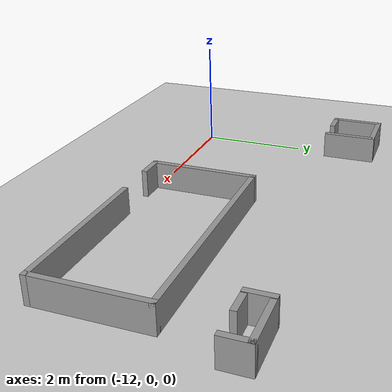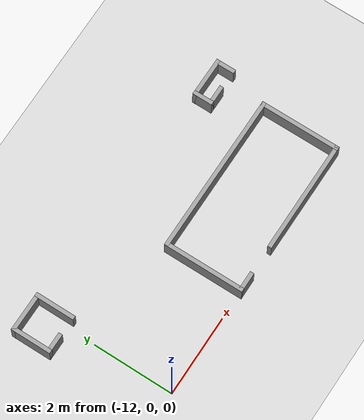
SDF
<sdf version="1.6">
 <world name="default">
  <model name="ground_plane">
   <static>1</static>
   <link name="link">
    <collision name="collision">
     <geometry><plane><normal>0 0 1</normal><size>30 30</size></plane></geometry>
     <surface>
      <contact><collide_bitmask>65535</collide_bitmask></contact>
      <friction><ode><mu>100</mu><mu2>50</mu2></ode></friction>
     </surface>
     <max_contacts>15</max_contacts>
    </collision>
    <visual name="visual">
     <cast_shadows>0</cast_shadows>
     <geometry><plane><normal>0 0 1</normal><size>30 30</size></plane></geometry>
     <material>
      <script><uri>file://media/materials/scripts/gazebo.material</uri><name>Gazebo/Grey</name></script>
     </material>
    </visual>
   </link>
  </model>
  <model name="shape2">
   <pose>-7.4 0.9 0 0 -0 0</pose>
   <link name="Wall_0">
    <collision name="Wall_0_Collision">
     <geometry><box><size>3.98685 0.1 0.5</size></box></geometry>
     <pose>0 0 0.25 0 -0 0</pose>
    </collision>
    <visual name="Wall_0_Visual">
     <pose>0 0 0.25 0 -0 0</pose>
     <geometry><box><size>3.98685 0.1 0.5</size></box></geometry>
     <material>
      <script><uri>file://media/materials/scripts/gazebo.material</uri><name>Gazebo/Grey</name></script>
      <ambient>1 1 1 1</ambient>
     </material>
     <meta><layer>0</layer></meta>
    </visual>
    <pose>0.003288 0.95 0 0 -0 0</pose>
   </link>
   <link name="Wall_1">
    <collision name="Wall_1_Collision">
     <geometry><box><size>2 0.1 0.5</size></box></geometry>
     <pose>0 0 0.25 0 -0 0</pose>
    </collision>
    <visual name="Wall_1_Visual">
     <pose>0 0 0.25 0 -0 0</pose>
     <geometry><box><size>2 0.1 0.5</size></box></geometry>
     <material>
      <script><uri>file://media/materials/scripts/gazebo.material</uri><name>Gazebo/Grey</name></script>
      <ambient>1 1 1 1</ambient>
     </material>
     <meta><layer>0</layer></meta>
    </visual>
    <pose>1.94671 0 0 0 -0 -1.5708</pose>
   </link>
   <link name="Wall_2">
    <collision name="Wall_2_Collision">
     <geometry><box><size>2.8 0.1 0.5</size></box></geometry>
     <pose>0 0 0.25 0 -0 0</pose>
    </collision>
    <visual name="Wall_2_Visual">
     <pose>0 0 0.25 0 -0 0</pose>
     <geometry><box><size>2.8 0.1 0.5</size></box></geometry>
     <material>
      <script><uri>file://media/materials/scripts/gazebo.material</uri><name>Gazebo/Grey</name></script>
      <ambient>1 1 1 1</ambient>
     </material>
     <meta><layer>0</layer></meta>
    </visual>
    <pose>0.596712 -0.95 0 0 -0 3.14159</pose>
   </link>
   <link name="Wall_4">
    <collision name="Wall_4_Collision">
     <geometry><box><size>2 0.1 0.5</size></box></geometry>
     <pose>0 0 0.25 0 -0 0</pose>
    </collision>
    <visual name="Wall_4_Visual">
     <pose>0 0 0.25 0 -0 0</pose>
     <geometry><box><size>2 0.1 0.5</size></box></geometry>
     <material>
      <script><uri>file://media/materials/scripts/gazebo.material</uri><name>Gazebo/Grey</name></script>
      <ambient>1 1 1 1</ambient>
     </material>
     <meta><layer>0</layer></meta>
    </visual>
    <pose>-1.94671 0 0 0 -0 -1.5708</pose>
   </link>
   <link name="Wall_5">
    <collision name="Wall_5_Collision">
     <geometry><box><size>0.5 0.1 0.5</size></box></geometry>
     <pose>0 0 0.25 0 -0 0</pose>
    </collision>
    <visual name="Wall_5_Visual">
     <pose>0 0 0.25 0 -0 0</pose>
     <geometry><box><size>0.5 0.1 0.5</size></box></geometry>
     <material>
      <script><uri>file://media/materials/scripts/gazebo.material</uri><name>Gazebo/Grey</name></script>
      <ambient>1 1 1 1</ambient>
     </material>
     <meta><layer>0</layer></meta>
    </visual>
    <pose>-1.74671 -0.95 0 0 -0 0</pose>
   </link>
   <static>1</static>
  </model>
  <model name="shape0">
   <pose>-5.6 3.05 0 0 -0 0</pose>
   <link name="Wall_0">
    <pose>0 0.2 0 0 -0 0</pose>
    <inertial>
     <mass>1</mass>
     <inertia><ixx>1</ixx><ixy>0</ixy><ixz>0</ixz><iyy>1</iyy><iyz>0</iyz><izz>1</izz></inertia>
    </inertial>
    <visual name="Wall_0_Visual">
     <pose>0 0 0.25 0 -0 0</pose>
     <geometry><box><size>1 0.1 0.5</size></box></geometry>
     <material>
      <script><uri>file://media/materials/scripts/gazebo.material</uri><name>Gazebo/Grey</name></script>
      <ambient>1 1 1 1</ambient>
      <shader type="vertex"><normal_map>__default__</normal_map></shader>
      <diffuse>0.7 0.7 0.7 1</diffuse>
      <specular>0.01 0.01 0.01 1</specular>
      <emissive>0 0 0 1</emissive>
     </material>
     <meta><layer>0</layer></meta>
    </visual>
    <collision name="Wall_0_Collision">
     <pose>0 0 0.25 0 -0 0</pose>
     <geometry><box><size>1 0.1 0.5</size></box></geometry>
     <surface>
      <friction>
       <ode><mu>1</mu><mu2>1</mu2><fdir1>0 0 0</fdir1><slip1>0</slip1><slip2>0</slip2></ode>
       <torsional>
        <coefficient>1</coefficient>
        <patch_radius>0</patch_radius>
        <surface_radius>0</surface_radius>
        <use_patch_radius>1</use_patch_radius>
        <ode><slip>0</slip></ode>
       </torsional>
      </friction>
      <bounce><restitution_coefficient>0</restitution_coefficient><threshold>1e+06</threshold></bounce>
      <contact>
       <collide_without_contact>0</collide_without_contact>
       <collide_without_contact_bitmask>1</collide_without_contact_bitmask>
       <collide_bitmask>1</collide_bitmask>
       <ode>
        <soft_cfm>0</soft_cfm>
        <soft_erp>0.2</soft_erp>
        <kp>1e+13</kp>
        <kd>1</kd>
        <max_vel>0.01</max_vel>
        <min_depth>0</min_depth>
       </ode>
       <bullet>
        <split_impulse>1</split_impulse>
        <split_impulse_penetration_threshold>-0.01</split_impulse_penetration_threshold>
        <soft_cfm>0</soft_cfm>
        <soft_erp>0.2</soft_erp>
        <kp>1e+13</kp>
        <kd>1</kd>
       </bullet>
      </contact>
     </surface>
    </collision>
   </link>
   <link name="Wall_2">
    <pose>-0.45 0 0.01 0 0 -1.5708</pose>
    <inertial>
     <mass>1</mass>
     <inertia><ixx>1</ixx><ixy>0</ixy><ixz>0</ixz><iyy>1</iyy><iyz>0</iyz><izz>1</izz></inertia>
    </inertial>
    <visual name="Wall_2_Visual">
     <pose>0 0 0.25 0 -0 0</pose>
     <geometry><box><size>0.5 0.1 0.5</size></box></geometry>
     <material>
      <script><uri>file://media/materials/scripts/gazebo.material</uri><name>Gazebo/Grey</name></script>
      <ambient>1 1 1 1</ambient>
      <shader type="vertex"><normal_map>__default__</normal_map></shader>
      <diffuse>0.7 0.7 0.7 1</diffuse>
      <specular>0.01 0.01 0.01 1</specular>
      <emissive>0 0 0 1</emissive>
     </material>
     <meta><layer>0</layer></meta>
    </visual>
    <collision name="Wall_2_Collision">
     <pose>0 0 0.25 0 -0 0</pose>
     <geometry><box><size>0.5 0.1 0.5</size></box></geometry>
     <surface>
      <friction>
       <ode><mu>1</mu><mu2>1</mu2><fdir1>0 0 0</fdir1><slip1>0</slip1><slip2>0</slip2></ode>
       <torsional>
        <coefficient>1</coefficient>
        <patch_radius>0</patch_radius>
        <surface_radius>0</surface_radius>
        <use_patch_radius>1</use_patch_radius>
        <ode><slip>0</slip></ode>
       </torsional>
      </friction>
      <bounce><restitution_coefficient>0</restitution_coefficient><threshold>1e+06</threshold></bounce>
      <contact>
       <collide_without_contact>0</collide_without_contact>
       <collide_without_contact_bitmask>1</collide_without_contact_bitmask>
       <collide_bitmask>1</collide_bitmask>
       <ode>
        <soft_cfm>0</soft_cfm>
        <soft_erp>0.2</soft_erp>
        <kp>1e+13</kp>
        <kd>1</kd>
        <max_vel>0.01</max_vel>
        <min_depth>0</min_depth>
       </ode>
       <bullet>
        <split_impulse>1</split_impulse>
        <split_impulse_penetration_threshold>-0.01</split_impulse_penetration_threshold>
        <soft_cfm>0</soft_cfm>
        <soft_erp>0.2</soft_erp>
        <kp>1e+13</kp>
        <kd>1</kd>
       </bullet>
      </contact>
     </surface>
    </collision>
   </link>
   <link name="Wall_4">
    <pose>0.45 0 0 0 0 -1.5708</pose>
    <inertial>
     <mass>1</mass>
     <inertia><ixx>1</ixx><ixy>0</ixy><ixz>0</ixz><iyy>1</iyy><iyz>0</iyz><izz>1</izz></inertia>
    </inertial>
    <visual name="Wall_4_Visual">
     <pose>0 0 0.25 0 -0 0</pose>
     <geometry><box><size>0.5 0.1 0.5</size></box></geometry>
     <material>
      <script><uri>file://media/materials/scripts/gazebo.material</uri><name>Gazebo/Grey</name></script>
      <ambient>1 1 1 1</ambient>
      <shader type="vertex"><normal_map>__default__</normal_map></shader>
      <diffuse>0.7 0.7 0.7 1</diffuse>
      <specular>0.01 0.01 0.01 1</specular>
      <emissive>0 0 0 1</emissive>
     </material>
     <meta><layer>0</layer></meta>
    </visual>
    <collision name="Wall_4_Collision">
     <pose>0 0 0.25 0 -0 0</pose>
     <geometry><box><size>0.5 0.1 0.5</size></box></geometry>
     <surface>
      <friction>
       <ode><mu>1</mu><mu2>1</mu2><fdir1>0 0 0</fdir1><slip1>0</slip1><slip2>0</slip2></ode>
       <torsional>
        <coefficient>1</coefficient>
        <patch_radius>0</patch_radius>
        <surface_radius>0</surface_radius>
        <use_patch_radius>1</use_patch_radius>
        <ode><slip>0</slip></ode>
       </torsional>
      </friction>
      <bounce><restitution_coefficient>0</restitution_coefficient><threshold>1e+06</threshold></bounce>
      <contact>
       <collide_without_contact>0</collide_without_contact>
       <collide_without_contact_bitmask>1</collide_without_contact_bitmask>
       <collide_bitmask>1</collide_bitmask>
       <ode>
        <soft_cfm>0</soft_cfm>
        <soft_erp>0.2</soft_erp>
        <kp>1e+13</kp>
        <kd>1</kd>
        <max_vel>0.01</max_vel>
        <min_depth>0</min_depth>
       </ode>
       <bullet>
        <split_impulse>1</split_impulse>
        <split_impulse_penetration_threshold>-0.01</split_impulse_penetration_threshold>
        <soft_cfm>0</soft_cfm>
        <soft_erp>0.2</soft_erp>
        <kp>1e+13</kp>
        <kd>1</kd>
       </bullet>
      </contact>
     </surface>
    </collision>
   </link>
   <link name="Wall_7">
    <pose>-0.25 -0.2 0 0 -0 0</pose>
    <inertial>
     <mass>1</mass>
     <inertia><ixx>1</ixx><ixy>0</ixy><ixz>0</ixz><iyy>1</iyy><iyz>0</iyz><izz>1</izz></inertia>
    </inertial>
    <visual name="Wall_7_Visual">
     <pose>0 0 0.25 0 -0 0</pose>
     <geometry><box><size>0.5 0.1 0.5</size></box></geometry>
     <material>
      <script><uri>file://media/materials/scripts/gazebo.material</uri><name>Gazebo/Grey</name></script>
      <ambient>1 1 1 1</ambient>
      <shader type="vertex"><normal_map>__default__</normal_map></shader>
      <diffuse>0.7 0.7 0.7 1</diffuse>
      <specular>0.01 0.01 0.01 1</specular>
      <emissive>0 0 0 1</emissive>
     </material>
     <meta><layer>0</layer></meta>
    </visual>
    <collision name="Wall_7_Collision">
     <pose>0 0 0.25 0 -0 0</pose>
     <geometry><box><size>0.5 0.1 0.5</size></box></geometry>
     <surface>
      <friction>
       <ode><mu>1</mu><mu2>1</mu2><fdir1>0 0 0</fdir1><slip1>0</slip1><slip2>0</slip2></ode>
       <torsional>
        <coefficient>1</coefficient>
        <patch_radius>0</patch_radius>
        <surface_radius>0</surface_radius>
        <use_patch_radius>1</use_patch_radius>
        <ode><slip>0</slip></ode>
       </torsional>
      </friction>
      <bounce><restitution_coefficient>0</restitution_coefficient><threshold>1e+06</threshold></bounce>
      <contact>
       <collide_without_contact>0</collide_without_contact>
       <collide_without_contact_bitmask>1</collide_without_contact_bitmask>
       <collide_bitmask>1</collide_bitmask>
       <ode>
        <soft_cfm>0</soft_cfm>
        <soft_erp>0.2</soft_erp>
        <kp>1e+13</kp>
        <kd>1</kd>
        <max_vel>0.01</max_vel>
        <min_depth>0</min_depth>
       </ode>
       <bullet>
        <split_impulse>1</split_impulse>
        <split_impulse_penetration_threshold>-0.01</split_impulse_penetration_threshold>
        <soft_cfm>0</soft_cfm>
        <soft_erp>0.2</soft_erp>
        <kp>1e+13</kp>
        <kd>1</kd>
       </bullet>
      </contact>
     </surface>
    </collision>
   </link>
   <static>1</static>
  </model>
  <model name="shape4">
   <pose>-12.3 3.1 0 0 -0 0</pose>
   <link name="Wall_14">
    <collision name="Wall_14_Collision">
     <geometry><box><size>1 0.1 0.5</size></box></geometry>
     <pose>0 0 0.25 0 -0 0</pose>
    </collision>
    <visual name="Wall_14_Visual">
     <pose>0 0 0.25 0 -0 0</pose>
     <geometry><box><size>1 0.1 0.5</size></box></geometry>
     <material>
      <script><uri>file://media/materials/scripts/gazebo.material</uri><name>Gazebo/Grey</name></script>
      <ambient>1 1 1 1</ambient>
     </material>
     <meta><layer>0</layer></meta>
    </visual>
    <pose>-0 0.45 0 0 -0 0</pose>
   </link>
   <link name="Wall_15">
    <collision name="Wall_15_Collision">
     <geometry><box><size>1 0.1 0.5</size></box></geometry>
     <pose>0 0 0.25 0 -0 0</pose>
    </collision>
    <visual name="Wall_15_Visual">
     <pose>0 0 0.25 0 -0 0</pose>
     <geometry><box><size>1 0.1 0.5</size></box></geometry>
     <material>
      <script><uri>file://media/materials/scripts/gazebo.material</uri><name>Gazebo/Grey</name></script>
      <ambient>1 1 1 1</ambient>
     </material>
     <meta><layer>0</layer></meta>
    </visual>
    <pose>0.45 -0 0 0 -0 -1.5708</pose>
   </link>
   <link name="Wall_17">
    <collision name="Wall_17_Collision">
     <geometry><box><size>1 0.1 0.5</size></box></geometry>
     <pose>0 0 0.25 0 -0 0</pose>
    </collision>
    <visual name="Wall_17_Visual">
     <pose>0 0 0.25 0 -0 0</pose>
     <geometry><box><size>1 0.1 0.5</size></box></geometry>
     <material>
      <script><uri>file://media/materials/scripts/gazebo.material</uri><name>Gazebo/Grey</name></script>
      <ambient>1 1 1 1</ambient>
     </material>
     <meta><layer>0</layer></meta>
    </visual>
    <pose>-0.45 -0 0 0 -0 -1.5708</pose>
   </link>
   <link name="Wall_18">
    <collision name="Wall_18_Collision">
     <geometry><box><size>0.5 0.1 0.5</size></box></geometry>
     <pose>0 0 0.25 0 -0 0</pose>
    </collision>
    <visual name="Wall_18_Visual">
     <pose>0 0 0.25 0 -0 0</pose>
     <geometry><box><size>0.5 0.1 0.5</size></box></geometry>
     <material>
      <script><uri>file://media/materials/scripts/gazebo.material</uri><name>Gazebo/Grey</name></script>
      <ambient>1 1 1 1</ambient>
     </material>
     <meta><layer>0</layer></meta>
    </visual>
    <pose>-0.25 -0.45 0 0 -0 0</pose>
   </link>
   <static>1</static>
  </model>
 </world>
</sdf>
